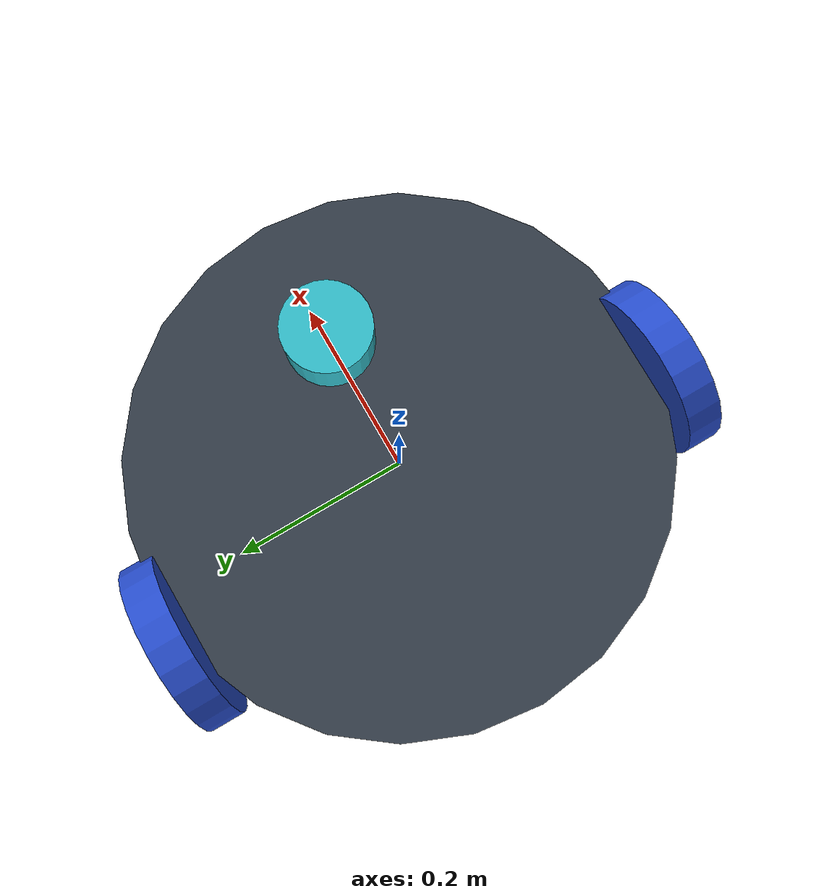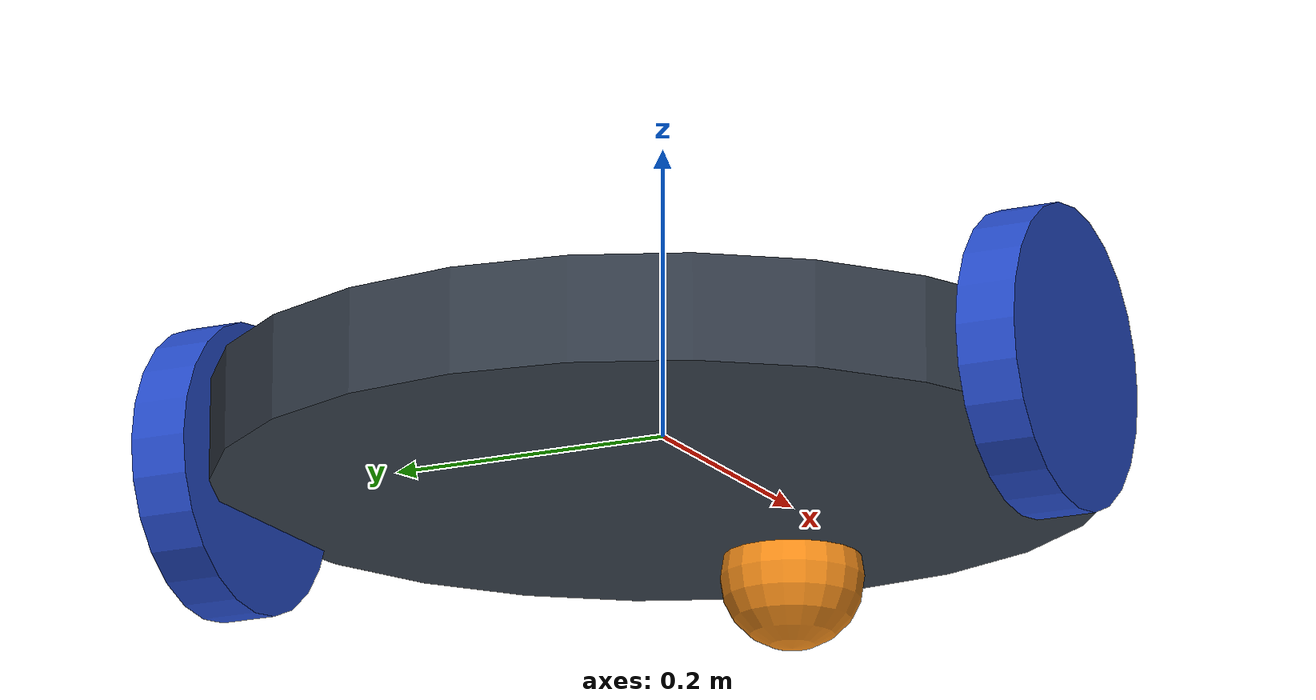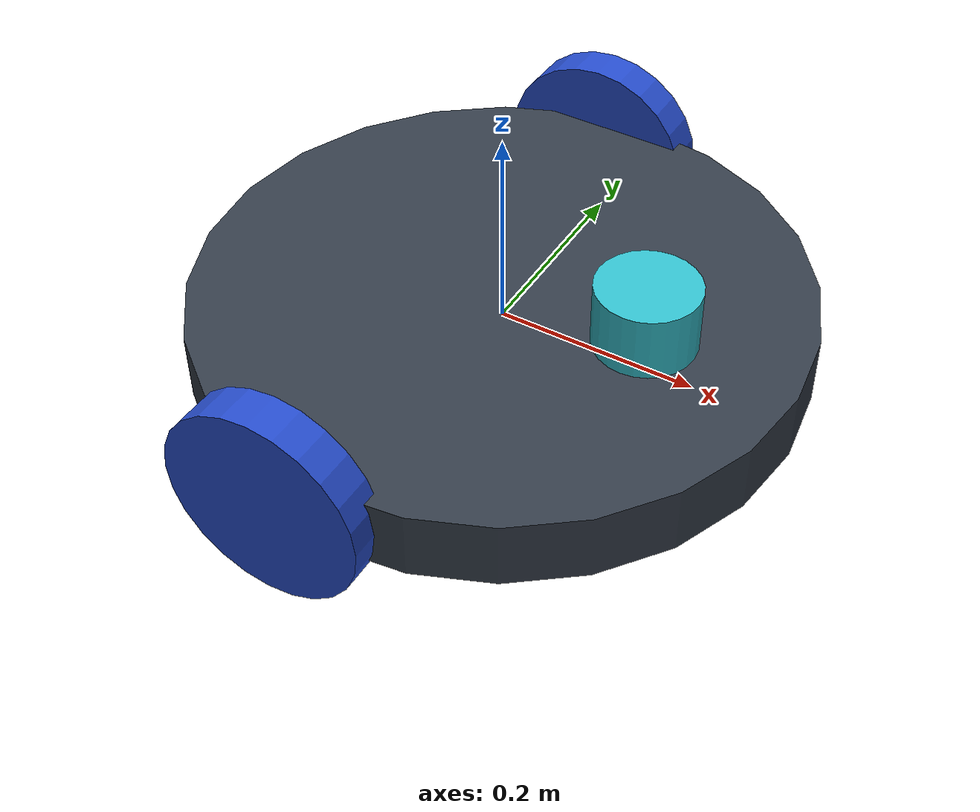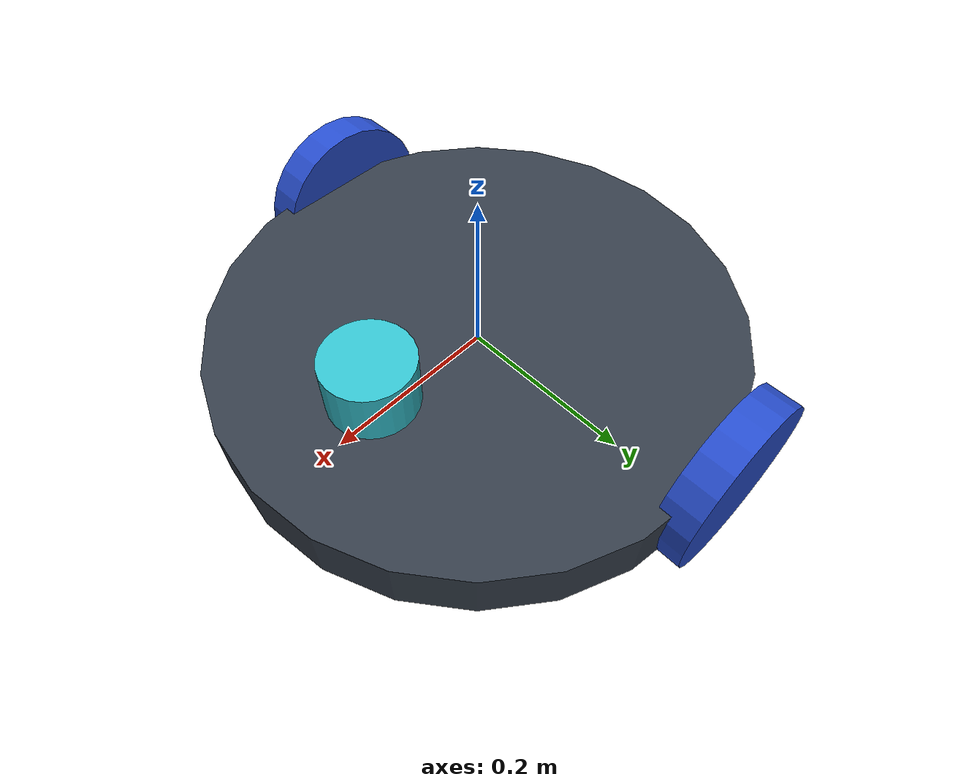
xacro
<?xml version="1.0" ?>
<robot name="m2wr" xmlns:xacro="https://www.ros.org/wiki/xacro" >   <!-- this second parameter is importent to make this file a valid xacro file -->

<!-- in rviz red - x  | green - y | blue -z  -->

<!-- while using odom tf do not forget to do   rosparam set use_sim_time true  as this gives all simulations the same time -->

<xacro:include filename="$(find bug1and2_algorithm)/urdf/material.xacro" />
<xacro:include filename="$(find bug1and2_algorithm)/urdf/gazebo.xacro" />
<xacro:include filename="$(find bug1and2_algorithm)/urdf/link_joint.xacro" />

  <link name="link_chassis">
    <!-- pose and inertial -->
    <pose>0 0 0.1 0 0 0</pose>

    <inertial>
      <mass value="15"/>
      <origin rpy="0 0 0" xyz="0 0 0.1"/>
      <inertia ixx="0.0395416666667" ixy="0" ixz="0" iyy="0.106208333333" iyz="0" izz="0.106208333333"/>
    </inertial>

    <collision name="collision_chassis">
      <geometry>
        <cylinder radius = "0.3" length= "0.07"/>
      </geometry>
    </collision>

    <visual>
      <origin rpy="0 0 0" xyz="0 0 0"/>
      <geometry>
        <cylinder radius = "0.3" length= "0.07"/>
      </geometry>
      <material name="blue"/>
    </visual>

    <!-- caster front -->
    <collision name = "caster_front_collision">
      <origin rpy=" 0 0 0" xyz="0.35 0 -0.05"/>
      <geometry>
        <sphere radius="0.05"/>
      </geometry>
      <surface>
        <friction>
          <ode>
            <mu>0</mu>
            <mu2>0</mu2>
            <slip1>1.0</slip1>
            <slip2>1.0</slip2>
          </ode>
        </friction>
      </surface>
    </collision>
    <visual name="caster_front_visual">
      <origin rpy=" 0 0 0" xyz="0.2 0 -0.05"/>
      <geometry>
        <sphere radius="0.05"/>
      </geometry>
    </visual>
    </link>

  <!-- Create sensor link  -->
  <xacro:sensor_link />
  <!-- Create sensor joint -->
  <xacro:sensor_joint />

  <!-- Create wheel right -->
  <xacro:link_wheel name="link_right_wheel" />
  <!-- Create joint right -->
  <xacro:joint_wheel name="joint_right_wheel" param_xyz="-0.05 0.3 0" child="link_right_wheel"  />
  <!-- Create wheel left -->
  <xacro:link_wheel name="link_left_wheel" />
  <!-- Create joint left -->
  <xacro:joint_wheel name="joint_left_wheel" param_xyz="-0.05 -0.3 0" child="link_left_wheel"  />

</robot>

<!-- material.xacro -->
<robot name="m2wr" xmlns:xacro="https://www.ros.org/wiki/xacro" >   <!-- this second parameter is importent to make this file a valid xacro file -->

  <material name="black">
    <color rgba="0.0 0.0 0.0 1.0"/>
  </material>
  <material name="blue">
    <color rgba="0.203125 0.23828125 0.28515625 1.0"/>
  </material>
  <material name="green">
    <color rgba="0.0 0.8 0.0 1.0"/>
  </material>
  <material name="grey">
    <color rgba="0.2 0.2 0.2 1.0"/>
  </material>
  <material name="orange">
    <color rgba="1.0 0.423529411765 0.0392156862745 1.0"/>
  </material>
  <material name="brown">
    <color rgba="0.870588235294 0.811764705882 0.764705882353 1.0"/>
  </material>
  <material name="red">
    <color rgba="0.80078125 0.12890625 0.1328125 1.0"/>
  </material>
  <material name="white">
    <color rgba="1.0 1.0 1.0 1.0"/>
  </material>

</robot>

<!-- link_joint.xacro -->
<robot name="m2wr" xmlns:xacro="https://www.ros.org/wiki/xacro" >   <!-- this second parameter is importent to make this file a valid xacro file -->

    <xacro:macro name="link_wheel" params="name">
    <link name="${name}">
            <inertial>
            <mass value="0.2"/>
            <origin rpy="0 1.5707 1.5707" xyz="0 0 0"/>
            <inertia ixx="0.00052666666" ixy="0" ixz="0" iyy="0.052666666" iyz="0" izz="0.001"/>
            </inertial>

            <collision name="${name}_collision">
            <origin rpy="0 1.5707 1.5707" xyz="0 0 0" />
            <geometry>
                <cylinder length="0.04" radius="0.1"/>
            </geometry>
            </collision>

            <visual name="${name}_visual">
            <origin rpy="0 1.5707 1.5707" xyz="0 0 0"/>
            <geometry>
                <cylinder length="0.04" radius="0.1"/>
            </geometry>
            </visual>
        </link>
    </xacro:macro>

    <xacro:macro name="joint_wheel" params="name param_xyz child">
        <joint name="${name}" type="continuous">
            <origin rpy="0 0 0" xyz="${param_xyz}"/>        <!-- this gives orientation -->
            <child link="${child}" />
            <parent link="link_chassis"/>
            <axis rpy="0 0 0" xyz="0 1 0"/>    <!-- this says rotate about y axis -->
            <limit effort="10000" velocity="1000"/>
            <joint_properties damping="1.0" friction="1.0" />
        </joint>

    </xacro:macro>

    <xacro:macro name="sensor_link">
        <link name = "sensor_link">
            <inertial>
                <origin xyz="0 0 0" rpy="0 0 0"/>
                <mass value="3"/>
                <inertia ixx="0.02" ixy="0" ixz="0" iyy="0.02" iyz="0" izz="0.02" />
            </inertial>

            <visual>
                <origin xyz="0 0 0" rpy="0 0 0" />
                <geometry>
                <cylinder radius="0.05" length="0.1" />
                </geometry>
                <material name="Cyan"/>
            </visual>

            <collision>
                <origin xyz="0 0 0" rpy="0 0 0"/>
                <geometry>
                <cylinder radius="0.05" length="0.1" />
                </geometry>
            </collision>
        </link>
    </xacro:macro>

    <xacro:macro name="sensor_joint">
        <joint name="sensor_joint" type="fixed">
            <origin xyz="0.15 0 0.05" rpy="0 0 0"/>
            <parent link="link_chassis"/>
            <child link="sensor_link"/>
        </joint>
    </xacro:macro>

</robot>
